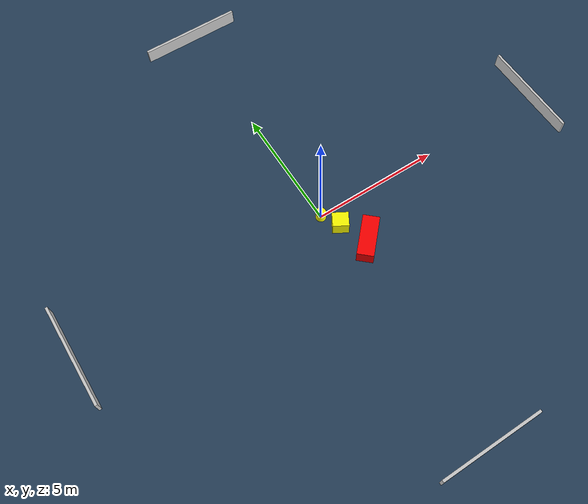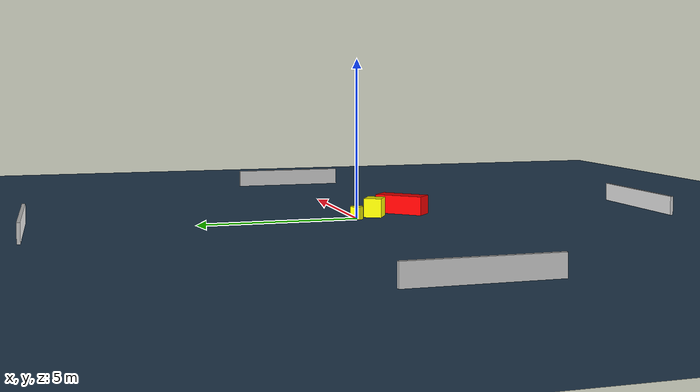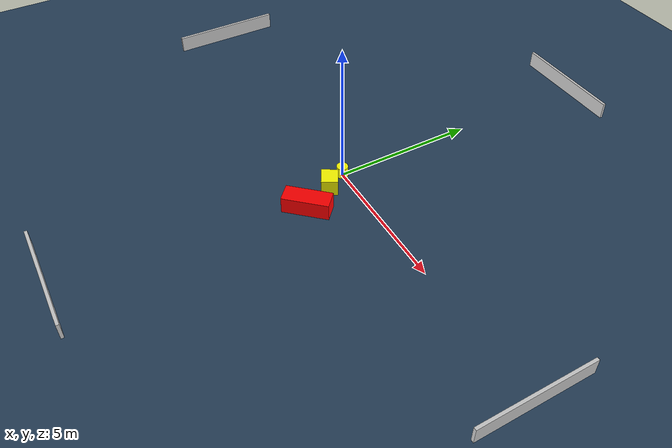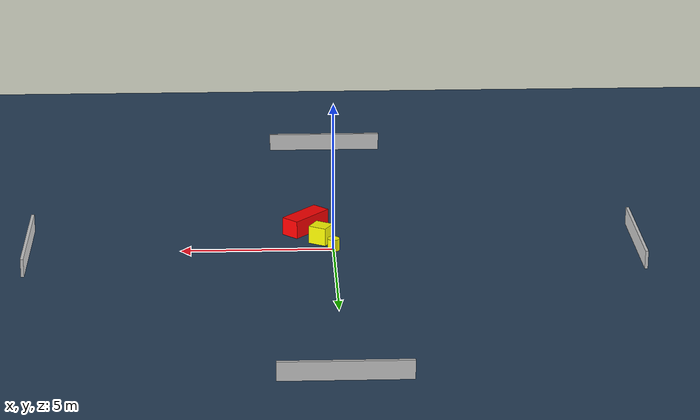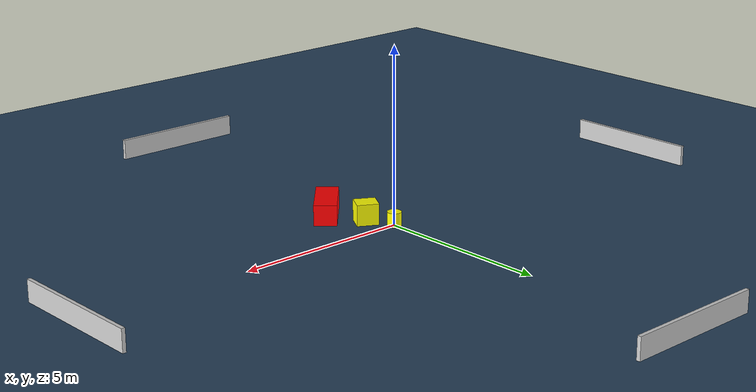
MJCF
<?xml version="1.0" ?>
<mujoco model="generated_environment">
  <option timestep="0.01" integrator="RK4" cone="elliptic"/>
  <default>
    <geom density="1"/>
  </default>
  <asset>
    <texture builtin="gradient" height="3072" name="skybox" rgb1="0.3 0.5 0.7" rgb2="0 0 0" type="skybox" width="512"/>
    <texture builtin="checker" height="300" name="groundplane" rgb1="0.2 0.3 0.4" rgb2="0.1 0.2 0.3" type="2d" width="300"/>
    <material name="groundplane" reflectance="0.2" texrepeat="5 5" texture="groundplane"/>
  </asset>
  <worldbody>
    <light dir="0 0 -1" directional="true" pos="0 0 1.5"/>
    <geom condim="3" friction="0.5 0.005 0.001" material="groundplane" name="floor" pos="0 0 0" size="0 0 0.05" type="plane"/>
    <body name="walls">
      <geom name="wall_1" condim="4" pos="-10.0 0.0 0.3" rgba="0.800000011920929 0.800000011920929 0.800000011920929 1.0" size="0.05 2.0 0.3" type="box"/>
      <geom name="wall_2" condim="4" pos="10.0 0.0 0.3" rgba="0.800000011920929 0.800000011920929 0.800000011920929 1.0" size="0.05 2.0 0.3" type="box"/>
      <geom name="wall_3" condim="4" pos="0.0 -10.0 0.3" rgba="0.800000011920929 0.800000011920929 0.800000011920929 1.0" size="2.0 0.05 0.3" type="box"/>
      <geom name="wall_4" condim="4" pos="0.0 10.0 0.3" rgba="0.800000011920929 0.800000011920929 0.800000011920929 1.0" size="2.0 0.05 0.3" type="box"/>
    </body>
    <body name="robot">
      <joint name="joint_x" type="slide" pos="0 0 0" axis="1 0 0"/>
      <joint name="joint_y" type="slide" pos="0 0 0" axis="0 1 0"/>
      <geom name="robot" type="cylinder" pos="0.0 0.0 0.2" size="0.2 0.2 0.0" mass="5.0" friction="1.0 0.005 0.0001" condim="4" rgba="1.0 1.0 0.0 1.0"/>
    </body>
    <body name="obstacle_1_movable">
      <geom name="obstacle_1_movable" condim="4" pos="0.3925250462117264 -0.7077583687526776 0.3" euler="0 0 60.11641921500266" friction="0.0 0.005 0.001" rgba="1.0 1.0 0.0 1.0" size="0.2793094157408862 0.30798260912583025 0.3" type="box" mass="0.1"/>
      <joint type="free"/>
    </body>
    <body name="obstacle_2_static">
      <geom name="obstacle_2_static" condim="4" pos="0.8765277872022913 -1.7976090154106905 0.3" euler="0 0 47.217418302407324" friction="0.0 0.005 0.001" rgba="1.0 0.0 0.0 1.0" size="0.7951371463884034 0.3186813360206846 0.3" type="box"/>
    </body>
  </worldbody>
  <actuator>
    <motor name="actuator_x" joint="joint_x" gear="1" ctrlrange="-1 1"/>
    <motor name="actuator_y" joint="joint_y" gear="1" ctrlrange="-1 1"/>
  </actuator>
</mujoco>
